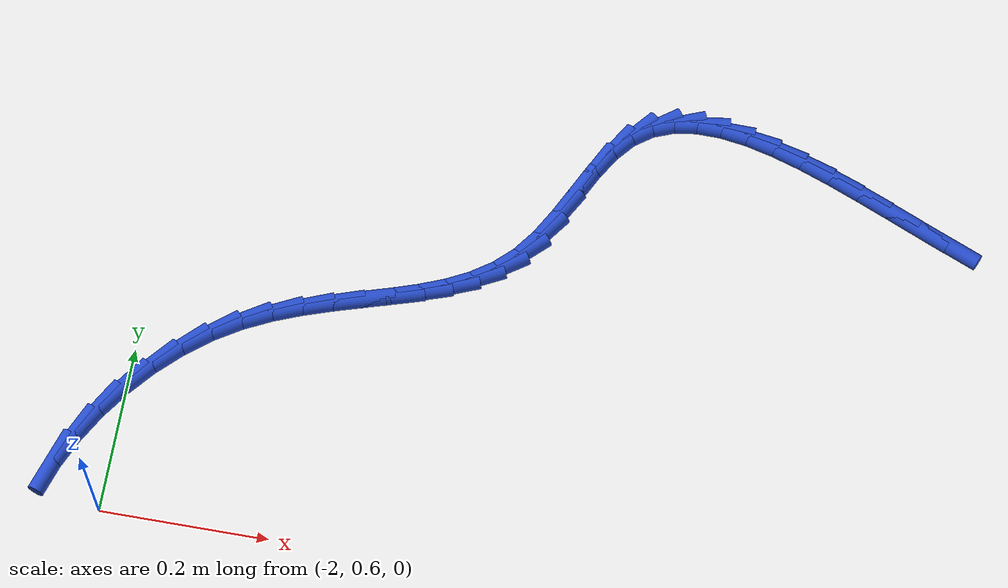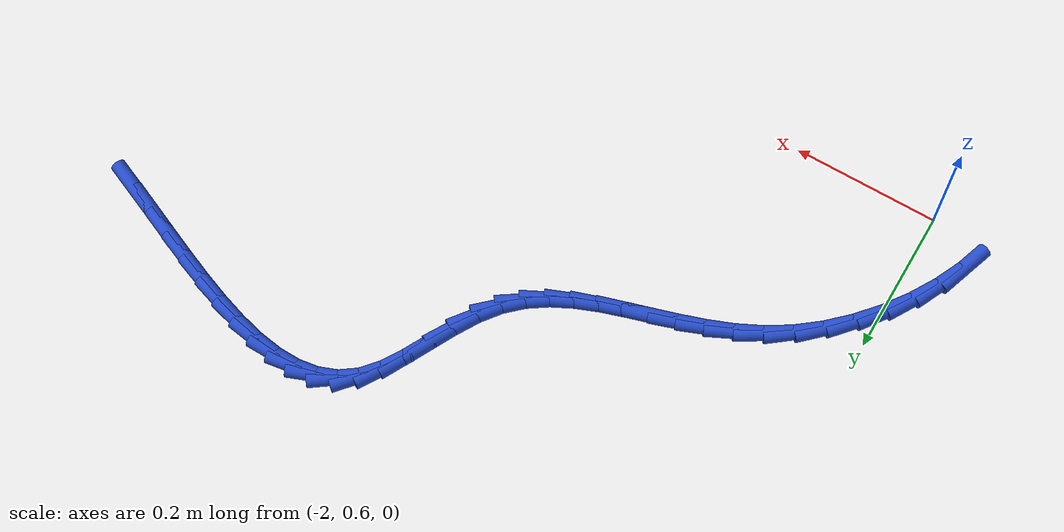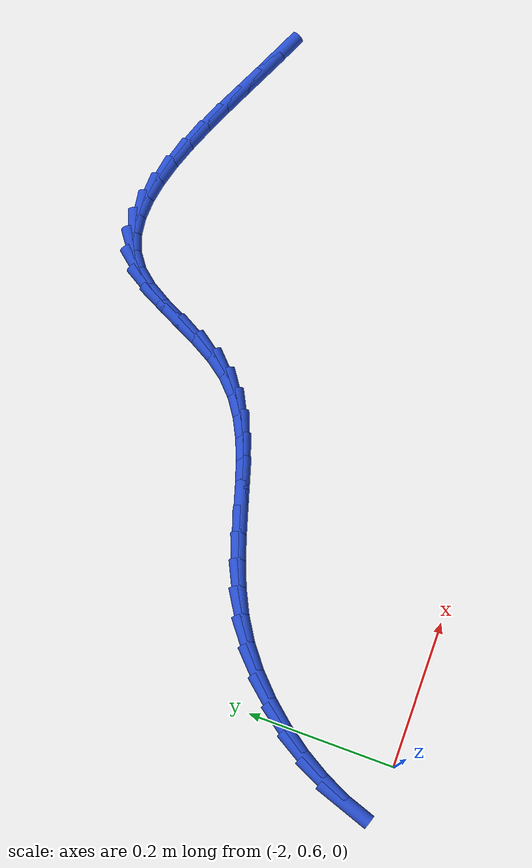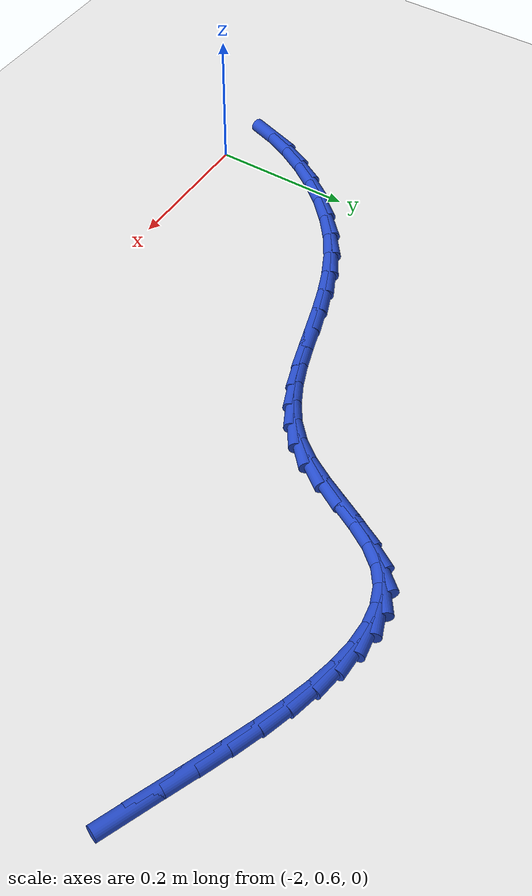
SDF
<sdf version="1.6">
 <world name="default">
  <model name="ground_plane">
   <static>1</static>
   <link name="link">
    <collision name="collision">
     <geometry><plane><normal>0 0 1</normal><size>100 100</size></plane></geometry>
     <surface><friction><ode><mu>100</mu><mu2>50</mu2></ode></friction></surface>
    </collision>
    <visual name="visual">
     <cast_shadows>0</cast_shadows>
     <geometry><plane><normal>0 0 1</normal><size>100 100</size></plane></geometry>
     <material>
      <script><uri>file://media/materials/scripts/gazebo.material</uri><name>Gazebo/WhiteGlow</name></script>
     </material>
    </visual>
   </link>
  </model>
  <model name="line">
   <link name="link_52">
    <pose>-1.0774307639176275 1.0932093216144898 0.01 0 1.57 -0.3959024256272547</pose>
    <collision name="collision">
     <geometry><cylinder><radius>0.01</radius><length>0.08</length></cylinder></geometry>
    </collision>
    <visual name="visual">
     <material>
      <script><name>Gazebo/Blue</name><uri>file://media/materials/scripts/gazebo.material</uri></script>
     </material>
     <geometry><cylinder><radius>0.01</radius><length>0.08</length></cylinder></geometry>
    </visual>
   </link>
   <link name="link_53">
    <pose>-1.1147000043149715 1.1087868023889695 0.01 0 1.57 -0.4043003505000687</pose>
    <collision name="collision">
     <geometry><cylinder><radius>0.01</radius><length>0.08</length></cylinder></geometry>
    </collision>
    <visual name="visual">
     <material>
      <script><name>Gazebo/Blue</name><uri>file://media/materials/scripts/gazebo.material</uri></script>
     </material>
     <geometry><cylinder><radius>0.01</radius><length>0.08</length></cylinder></geometry>
    </visual>
   </link>
   <link name="link_54">
    <pose>-1.152209449067476 1.1248360262439465 0.01 0 1.57 -0.40049798249615065</pose>
    <collision name="collision">
     <geometry><cylinder><radius>0.01</radius><length>0.08</length></cylinder></geometry>
    </collision>
    <visual name="visual">
     <material>
      <script><name>Gazebo/Blue</name><uri>file://media/materials/scripts/gazebo.material</uri></script>
     </material>
     <geometry><cylinder><radius>0.01</radius><length>0.08</length></cylinder></geometry>
    </visual>
   </link>
   <link name="link_55">
    <pose>-1.1896427518464734 1.1406845507510126 0.01 0 1.57 -0.3842026968703422</pose>
    <collision name="collision">
     <geometry><cylinder><radius>0.01</radius><length>0.08</length></cylinder></geometry>
    </collision>
    <visual name="visual">
     <material>
      <script><name>Gazebo/Blue</name><uri>file://media/materials/scripts/gazebo.material</uri></script>
     </material>
     <geometry><cylinder><radius>0.01</radius><length>0.08</length></cylinder></geometry>
    </visual>
   </link>
   <link name="link_56">
    <pose>-1.226683566323294 1.1556599334817588 0.01 0 1.57 -0.3540643331839261</pose>
    <collision name="collision">
     <geometry><cylinder><radius>0.01</radius><length>0.08</length></cylinder></geometry>
    </collision>
    <visual name="visual">
     <material>
      <script><name>Gazebo/Blue</name><uri>file://media/materials/scripts/gazebo.material</uri></script>
     </material>
     <geometry><cylinder><radius>0.01</radius><length>0.08</length></cylinder></geometry>
    </visual>
   </link>
   <link name="link_57">
    <pose>-1.263015546169269 1.1690897320077762 0.01 0 1.57 -0.30748146175503777</pose>
    <collision name="collision">
     <geometry><cylinder><radius>0.01</radius><length>0.08</length></cylinder></geometry>
    </collision>
    <visual name="visual">
     <material>
      <script><name>Gazebo/Blue</name><uri>file://media/materials/scripts/gazebo.material</uri></script>
     </material>
     <geometry><cylinder><radius>0.01</radius><length>0.08</length></cylinder></geometry>
    </visual>
   </link>
   <link name="link_58">
    <pose>-1.2983223450557293 1.1803015039006561 0.01 0 1.57 -0.24026203141074862</pose>
    <collision name="collision">
     <geometry><cylinder><radius>0.01</radius><length>0.08</length></cylinder></geometry>
    </collision>
    <visual name="visual">
     <material>
      <script><name>Gazebo/Blue</name><uri>file://media/materials/scripts/gazebo.material</uri></script>
     </material>
     <geometry><cylinder><radius>0.01</radius><length>0.08</length></cylinder></geometry>
    </visual>
   </link>
   <link name="link_59">
    <pose>-1.3322876166540063 1.18862280673199 0.01 0 1.57 -0.14623352493031438</pose>
    <collision name="collision">
     <geometry><cylinder><radius>0.01</radius><length>0.08</length></cylinder></geometry>
    </collision>
    <visual name="visual">
     <material>
      <script><name>Gazebo/Blue</name><uri>file://media/materials/scripts/gazebo.material</uri></script>
     </material>
     <geometry><cylinder><radius>0.01</radius><length>0.08</length></cylinder></geometry>
    </visual>
   </link>
   <link name="link_60">
    <pose>-1.364595014635431 1.1933811980733684 0.01 0 1.57 -0.017241371625488295</pose>
    <collision name="collision">
     <geometry><cylinder><radius>0.01</radius><length>0.08</length></cylinder></geometry>
    </collision>
    <visual name="visual">
     <material>
      <script><name>Gazebo/Blue</name><uri>file://media/materials/scripts/gazebo.material</uri></script>
     </material>
     <geometry><cylinder><radius>0.01</radius><length>0.08</length></cylinder></geometry>
    </visual>
   </link>
   <link name="link_61">
    <pose>-1.3949281926713337 1.193904235496383 0.01 0 1.57 0.15510468069740346</pose>
    <collision name="collision">
     <geometry><cylinder><radius>0.01</radius><length>0.08</length></cylinder></geometry>
    </collision>
    <visual name="visual">
     <material>
      <script><name>Gazebo/Blue</name><uri>file://media/materials/scripts/gazebo.material</uri></script>
     </material>
     <geometry><cylinder><radius>0.01</radius><length>0.08</length></cylinder></geometry>
    </visual>
   </link>
   <link name="link_62">
    <pose>-1.4229708044330467 1.1895194765726256 0.01 0 1.57 0.3733933126894242</pose>
    <collision name="collision">
     <geometry><cylinder><radius>0.01</radius><length>0.08</length></cylinder></geometry>
    </collision>
    <visual name="visual">
     <material>
      <script><name>Gazebo/Blue</name><uri>file://media/materials/scripts/gazebo.material</uri></script>
     </material>
     <geometry><cylinder><radius>0.01</radius><length>0.08</length></cylinder></geometry>
    </visual>
   </link>
   <link name="link_63">
    <pose>-1.4484065035919003 1.1795544788736865 0.01 0 1.57 0.6242781612145978</pose>
    <collision name="collision">
     <geometry><cylinder><radius>0.01</radius><length>0.08</length></cylinder></geometry>
    </collision>
    <visual name="visual">
     <material>
      <script><name>Gazebo/Blue</name><uri>file://media/materials/scripts/gazebo.material</uri></script>
     </material>
     <geometry><cylinder><radius>0.01</radius><length>0.08</length></cylinder></geometry>
    </visual>
   </link>
   <link name="link_64">
    <pose>-1.4709189438192252 1.163336799971157 0.01 0 1.57 0.8681256905886411</pose>
    <collision name="collision">
     <geometry><cylinder><radius>0.01</radius><length>0.08</length></cylinder></geometry>
    </collision>
    <visual name="visual">
     <material>
      <script><name>Gazebo/Blue</name><uri>file://media/materials/scripts/gazebo.material</uri></script>
     </material>
     <geometry><cylinder><radius>0.01</radius><length>0.08</length></cylinder></geometry>
    </visual>
   </link>
   <link name="link_65">
    <pose>-1.4903164485098914 1.1404316999327444 0.01 0 1.57 1.0266291930084523</pose>
    <collision name="collision">
     <geometry><cylinder><radius>0.01</radius><length>0.08</length></cylinder></geometry>
    </collision>
    <visual name="visual">
     <material>
      <script><name>Gazebo/Blue</name><uri>file://media/materials/scripts/gazebo.material</uri></script>
     </material>
     <geometry><cylinder><radius>0.01</radius><length>0.08</length></cylinder></geometry>
    </visual>
   </link>
   <link name="link_66">
    <pose>-1.5073725724766769 1.1122448048015792 0.01 0 1.57 1.0985582138030214</pose>
    <collision name="collision">
     <geometry><cylinder><radius>0.01</radius><length>0.08</length></cylinder></geometry>
    </collision>
    <visual name="visual">
     <material>
      <script><name>Gazebo/Blue</name><uri>file://media/materials/scripts/gazebo.material</uri></script>
     </material>
     <geometry><cylinder><radius>0.01</radius><length>0.08</length></cylinder></geometry>
    </visual>
   </link>
   <link name="link_67">
    <pose>-1.523311262605635 1.0810404841634105 0.01 0 1.57 1.1053610300656398</pose>
    <collision name="collision">
     <geometry><cylinder><radius>0.01</radius><length>0.08</length></cylinder></geometry>
    </collision>
    <visual name="visual">
     <material>
      <script><name>Gazebo/Blue</name><uri>file://media/materials/scripts/gazebo.material</uri></script>
     </material>
     <geometry><cylinder><radius>0.01</radius><length>0.08</length></cylinder></geometry>
    </visual>
   </link>
   <link name="link_68">
    <pose>-1.539359000185425 1.0490879398423834 0.01 0 1.57 1.0518038132027054</pose>
    <collision name="collision">
     <geometry><cylinder><radius>0.01</radius><length>0.08</length></cylinder></geometry>
    </collision>
    <visual name="visual">
     <material>
      <script><name>Gazebo/Blue</name><uri>file://media/materials/scripts/gazebo.material</uri></script>
     </material>
     <geometry><cylinder><radius>0.01</radius><length>0.08</length></cylinder></geometry>
    </visual>
   </link>
   <link name="link_69">
    <pose>-1.5567422665047042 1.0186563736626426 0.01 0 1.57 0.9287650312869475</pose>
    <collision name="collision">
     <geometry><cylinder><radius>0.01</radius><length>0.08</length></cylinder></geometry>
    </collision>
    <visual name="visual">
     <material>
      <script><name>Gazebo/Blue</name><uri>file://media/materials/scripts/gazebo.material</uri></script>
     </material>
     <geometry><cylinder><radius>0.01</radius><length>0.08</length></cylinder></geometry>
    </visual>
   </link>
   <link name="link_70">
    <pose>-1.5766771100107988 0.9919950321727288 0.01 0 1.57 0.7570099110917674</pose>
    <collision name="collision">
     <geometry><cylinder><radius>0.01</radius><length>0.08</length></cylinder></geometry>
    </collision>
    <visual name="visual">
     <material>
      <script><name>Gazebo/Blue</name><uri>file://media/materials/scripts/gazebo.material</uri></script>
     </material>
     <geometry><cylinder><radius>0.01</radius><length>0.08</length></cylinder></geometry>
    </visual>
   </link>
   <link name="link_71">
    <pose>-1.5997665767066234 0.9701806498187563 0.01 0 1.57 0.5992589299482725</pose>
    <collision name="collision">
     <geometry><cylinder><radius>0.01</radius><length>0.08</length></cylinder></geometry>
    </collision>
    <visual name="visual">
     <material>
      <script><name>Gazebo/Blue</name><uri>file://media/materials/scripts/gazebo.material</uri></script>
     </material>
     <geometry><cylinder><radius>0.01</radius><length>0.08</length></cylinder></geometry>
    </visual>
   </link>
   <link name="link_72">
    <pose>-1.6256709413481314 0.9524866881448151 0.01 0 1.57 0.4722020520295158</pose>
    <collision name="collision">
     <geometry><cylinder><radius>0.01</radius><length>0.08</length></cylinder></geometry>
    </collision>
    <visual name="visual">
     <material>
      <script><name>Gazebo/Blue</name><uri>file://media/materials/scripts/gazebo.material</uri></script>
     </material>
     <geometry><cylinder><radius>0.01</radius><length>0.08</length></cylinder></geometry>
    </visual>
   </link>
   <link name="link_73">
    <pose>-1.6539702368437892 0.9380331271907041 0.01 0 1.57 0.3800357765153801</pose>
    <collision name="collision">
     <geometry><cylinder><radius>0.01</radius><length>0.08</length></cylinder></geometry>
    </collision>
    <visual name="visual">
     <material>
      <script><name>Gazebo/Blue</name><uri>file://media/materials/scripts/gazebo.material</uri></script>
     </material>
     <geometry><cylinder><radius>0.01</radius><length>0.08</length></cylinder></geometry>
    </visual>
   </link>
   <link name="link_74">
    <pose>-1.6842444961020613 0.9259399469962228 0.01 0 1.57 0.32183728582792975</pose>
    <collision name="collision">
     <geometry><cylinder><radius>0.01</radius><length>0.08</length></cylinder></geometry>
    </collision>
    <visual name="visual">
     <material>
      <script><name>Gazebo/Blue</name><uri>file://media/materials/scripts/gazebo.material</uri></script>
     </material>
     <geometry><cylinder><radius>0.01</radius><length>0.08</length></cylinder></geometry>
    </visual>
   </link>
   <link name="link_75">
    <pose>-1.7160737520314113 0.9153271276011695 0.01 0 1.57 0.29488184790997624</pose>
    <collision name="collision">
     <geometry><cylinder><radius>0.01</radius><length>0.08</length></cylinder></geometry>
    </collision>
    <visual name="visual">
     <material>
      <script><name>Gazebo/Blue</name><uri>file://media/materials/scripts/gazebo.material</uri></script>
     </material>
     <geometry><cylinder><radius>0.01</radius><length>0.08</length></cylinder></geometry>
    </visual>
   </link>
   <link name="link_76">
    <pose>-1.7490380375403063 0.905314649045344 0.01 0 1.57 0.2965796398043195</pose>
    <collision name="collision">
     <geometry><cylinder><radius>0.01</radius><length>0.08</length></cylinder></geometry>
    </collision>
    <visual name="visual">
     <material>
      <script><name>Gazebo/Blue</name><uri>file://media/materials/scripts/gazebo.material</uri></script>
     </material>
     <geometry><cylinder><radius>0.01</radius><length>0.08</length></cylinder></geometry>
    </visual>
   </link>
   <link name="link_77">
    <pose>-1.7827173855372087 0.8950224913685445 0.01 0 1.57 0.32511218453097857</pose>
    <collision name="collision">
     <geometry><cylinder><radius>0.01</radius><length>0.08</length></cylinder></geometry>
    </collision>
    <visual name="visual">
     <material>
      <script><name>Gazebo/Blue</name><uri>file://media/materials/scripts/gazebo.material</uri></script>
     </material>
     <geometry><cylinder><radius>0.01</radius><length>0.08</length></cylinder></geometry>
    </visual>
   </link>
   <link name="link_78">
    <pose>-1.8166918289305845 0.8835706346105703 0.01 0 1.57 0.37927688602325094</pose>
    <collision name="collision">
     <geometry><cylinder><radius>0.01</radius><length>0.08</length></cylinder></geometry>
    </collision>
    <visual name="visual">
     <material>
      <script><name>Gazebo/Blue</name><uri>file://media/materials/scripts/gazebo.material</uri></script>
     </material>
     <geometry><cylinder><radius>0.01</radius><length>0.08</length></cylinder></geometry>
    </visual>
   </link>
   <link name="link_79">
    <pose>-1.8505414006289 0.8700790588112206 0.01 0 1.57 0.45784065455794876</pose>
    <collision name="collision">
     <geometry><cylinder><radius>0.01</radius><length>0.08</length></cylinder></geometry>
    </collision>
    <visual name="visual">
     <material>
      <script><name>Gazebo/Blue</name><uri>file://media/materials/scripts/gazebo.material</uri></script>
     </material>
     <geometry><cylinder><radius>0.01</radius><length>0.08</length></cylinder></geometry>
    </visual>
   </link>
   <link name="link_80">
    <pose>-1.883846133540618 0.8536677440102942 0.01 0 1.57 0.5585185335652162</pose>
    <collision name="collision">
     <geometry><cylinder><radius>0.01</radius><length>0.08</length></cylinder></geometry>
    </collision>
    <visual name="visual">
     <material>
      <script><name>Gazebo/Blue</name><uri>file://media/materials/scripts/gazebo.material</uri></script>
     </material>
     <geometry><cylinder><radius>0.01</radius><length>0.08</length></cylinder></geometry>
    </visual>
   </link>
   <link name="link_81">
    <pose>-1.9161859482448682 0.8334589925996871 0.01 0 1.57 0.6685669578797839</pose>
    <collision name="collision">
     <geometry><cylinder><radius>0.01</radius><length>0.08</length></cylinder></geometry>
    </collision>
    <visual name="visual">
     <material>
      <script><name>Gazebo/Blue</name><uri>file://media/materials/scripts/gazebo.material</uri></script>
     </material>
     <geometry><cylinder><radius>0.01</radius><length>0.08</length></cylinder></geometry>
    </visual>
   </link>
   <link name="link_82">
    <pose>-1.9471190437882713 0.8090241886503045 0.01 0 1.57 0.7691403449177278</pose>
    <collision name="collision">
     <geometry><cylinder><radius>0.01</radius><length>0.08</length></cylinder></geometry>
    </collision>
    <visual name="visual">
     <material>
      <script><name>Gazebo/Blue</name><uri>file://media/materials/scripts/gazebo.material</uri></script>
     </material>
     <geometry><cylinder><radius>0.01</radius><length>0.08</length></cylinder></geometry>
    </visual>
   </link>
   <link name="link_83">
    <pose>-1.9761561449089515 0.7809162235074312 0.01 0 1.57 0.8623616876018091</pose>
    <collision name="collision">
     <geometry><cylinder><radius>0.01</radius><length>0.08</length></cylinder></geometry>
    </collision>
    <visual name="visual">
     <material>
      <script><name>Gazebo/Blue</name><uri>file://media/materials/scripts/gazebo.material</uri></script>
     </material>
     <geometry><cylinder><radius>0.01</radius><length>0.08</length></cylinder></geometry>
    </visual>
   </link>
   <link name="link_84">
    <pose>-2.0028017033383927 0.7498176797503118 0.01 0 1.57 0.9525983083799183</pose>
    <collision name="collision">
     <geometry><cylinder><radius>0.01</radius><length>0.08</length></cylinder></geometry>
    </collision>
    <visual name="visual">
     <material>
      <script><name>Gazebo/Blue</name><uri>file://media/materials/scripts/gazebo.material</uri></script>
     </material>
     <geometry><cylinder><radius>0.01</radius><length>0.08</length></cylinder></geometry>
    </visual>
   </link>
   <link name="link_85">
    <pose>-2.0265601708080805 0.7164111399581904 0.01 0 1.57 1.0439895789155333</pose>
    <collision name="collision">
     <geometry><cylinder><radius>0.01</radius><length>0.08</length></cylinder></geometry>
    </collision>
    <visual name="visual">
     <material>
      <script><name>Gazebo/Blue</name><uri>file://media/materials/scripts/gazebo.material</uri></script>
     </material>
     <geometry><cylinder><radius>0.01</radius><length>0.08</length></cylinder></geometry>
    </visual>
   </link>
   <link name="link_86">
    <pose>-2.0469359990494986 0.6813791867103128 0.01 0 1.57 1.1408227747753346</pose>
    <collision name="collision">
     <geometry><cylinder><radius>0.01</radius><length>0.08</length></cylinder></geometry>
    </collision>
    <visual name="visual">
     <material>
      <script><name>Gazebo/Blue</name><uri>file://media/materials/scripts/gazebo.material</uri></script>
     </material>
     <geometry><cylinder><radius>0.01</radius><length>0.08</length></cylinder></geometry>
    </visual>
   </link>
   <link name="link_87">
    <pose>-2.0634336397941304 0.6454044025859228 0.01 0 1.57 1.2479145666819753</pose>
    <collision name="collision">
     <geometry><cylinder><radius>0.01</radius><length>0.08</length></cylinder></geometry>
    </collision>
    <visual name="visual">
     <material>
      <script><name>Gazebo/Blue</name><uri>file://media/materials/scripts/gazebo.material</uri></script>
     </material>
     <geometry><cylinder><radius>0.01</radius><length>0.08</length></cylinder></geometry>
    </visual>
   </link>
  </model>
 </world>
</sdf>
